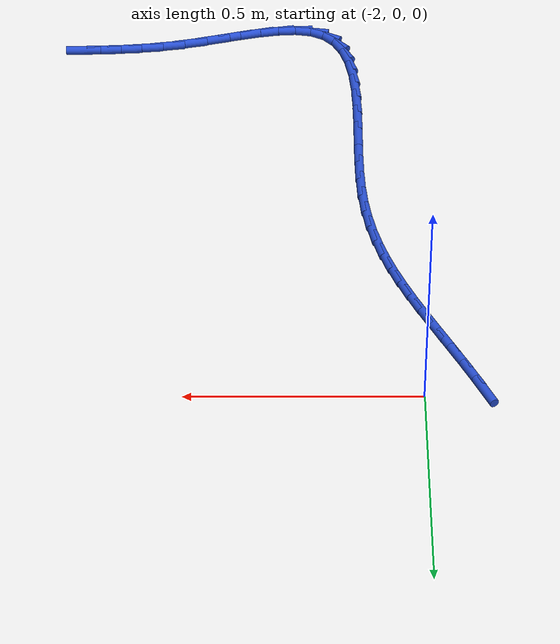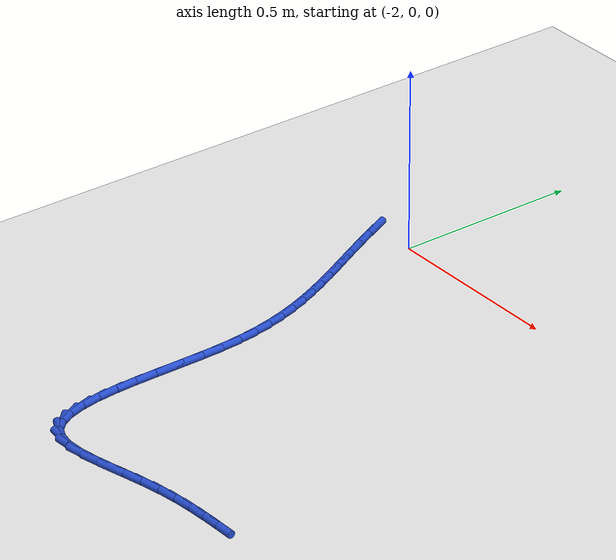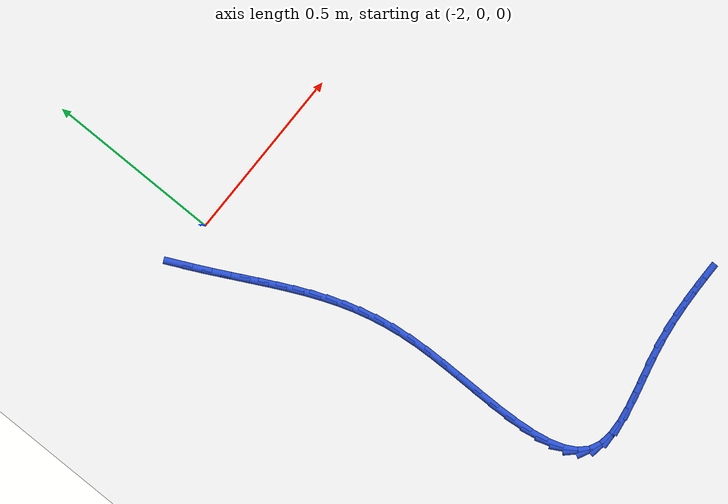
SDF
<sdf version="1.6">
 <world name="default">
  <model name="ground_plane">
   <static>1</static>
   <link name="link">
    <collision name="collision">
     <geometry><plane><normal>0 0 1</normal><size>100 100</size></plane></geometry>
     <surface><friction><ode><mu>100</mu><mu2>50</mu2></ode></friction></surface>
    </collision>
    <visual name="visual">
     <cast_shadows>0</cast_shadows>
     <geometry><plane><normal>0 0 1</normal><size>100 100</size></plane></geometry>
     <material>
      <script><uri>file://media/materials/scripts/gazebo.material</uri><name>Gazebo/WhiteGlow</name></script>
     </material>
    </visual>
   </link>
  </model>
  <model name="line">
   <link name="link_74">
    <pose>-2.124892368092735 -0.007736066495244359 0.01 0 1.57 -1.1232187132181986</pose>
    <collision name="collision">
     <geometry><cylinder><radius>0.01</radius><length>0.08</length></cylinder></geometry>
    </collision>
    <visual name="visual">
     <material>
      <script><name>Gazebo/Blue</name><uri>file://media/materials/scripts/gazebo.material</uri></script>
     </material>
     <geometry><cylinder><radius>0.01</radius><length>0.08</length></cylinder></geometry>
    </visual>
   </link>
   <link name="link_75">
    <pose>-2.101810845489153 -0.05581546816037469 0.01 0 1.57 -1.1047514095330906</pose>
    <collision name="collision">
     <geometry><cylinder><radius>0.01</radius><length>0.08</length></cylinder></geometry>
    </collision>
    <visual name="visual">
     <material>
      <script><name>Gazebo/Blue</name><uri>file://media/materials/scripts/gazebo.material</uri></script>
     </material>
     <geometry><cylinder><radius>0.01</radius><length>0.08</length></cylinder></geometry>
    </visual>
   </link>
   <link name="link_76">
    <pose>-2.0779389456481328 -0.10327449117829497 0.01 0 1.57 -1.0941880202939966</pose>
    <collision name="collision">
     <geometry><cylinder><radius>0.01</radius><length>0.08</length></cylinder></geometry>
    </collision>
    <visual name="visual">
     <material>
      <script><name>Gazebo/Blue</name><uri>file://media/materials/scripts/gazebo.material</uri></script>
     </material>
     <geometry><cylinder><radius>0.01</radius><length>0.08</length></cylinder></geometry>
    </visual>
   </link>
   <link name="link_77">
    <pose>-2.05383511401591 -0.14995952549926878 0.01 0 1.57 -1.0915617569941265</pose>
    <collision name="collision">
     <geometry><cylinder><radius>0.01</radius><length>0.08</length></cylinder></geometry>
    </collision>
    <visual name="visual">
     <material>
      <script><name>Gazebo/Blue</name><uri>file://media/materials/scripts/gazebo.material</uri></script>
     </material>
     <geometry><cylinder><radius>0.01</radius><length>0.08</length></cylinder></geometry>
    </visual>
   </link>
   <link name="link_78">
    <pose>-2.030057796038722 -0.19571696107355957 0.01 0 1.57 -1.0972733844440963</pose>
    <collision name="collision">
     <geometry><cylinder><radius>0.01</radius><length>0.08</length></cylinder></geometry>
    </collision>
    <visual name="visual">
     <material>
      <script><name>Gazebo/Blue</name><uri>file://media/materials/scripts/gazebo.material</uri></script>
     </material>
     <geometry><cylinder><radius>0.01</radius><length>0.08</length></cylinder></geometry>
    </visual>
   </link>
   <link name="link_79">
    <pose>-2.0071654371628016 -0.24039318785143274 0.01 0 1.57 -1.1119694350751819</pose>
    <collision name="collision">
     <geometry><cylinder><radius>0.01</radius><length>0.08</length></cylinder></geometry>
    </collision>
    <visual name="visual">
     <material>
      <script><name>Gazebo/Blue</name><uri>file://media/materials/scripts/gazebo.material</uri></script>
     </material>
     <geometry><cylinder><radius>0.01</radius><length>0.08</length></cylinder></geometry>
    </visual>
   </link>
   <link name="link_80">
    <pose>-1.9856593117580477 -0.2839288640391011 0.01 0 1.57 -1.1355880374992176</pose>
    <collision name="collision">
     <geometry><cylinder><radius>0.01</radius><length>0.08</length></cylinder></geometry>
    </collision>
    <visual name="visual">
     <material>
      <script><name>Gazebo/Blue</name><uri>file://media/materials/scripts/gazebo.material</uri></script>
     </material>
     <geometry><cylinder><radius>0.01</radius><length>0.08</length></cylinder></geometry>
    </visual>
   </link>
   <link name="link_81">
    <pose>-1.965762255299964 -0.3267237602234365 0.01 0 1.57 -1.1679799476230657</pose>
    <collision name="collision">
     <geometry><cylinder><radius>0.01</radius><length>0.08</length></cylinder></geometry>
    </collision>
    <visual name="visual">
     <material>
      <script><name>Gazebo/Blue</name><uri>file://media/materials/scripts/gazebo.material</uri></script>
     </material>
     <geometry><cylinder><radius>0.01</radius><length>0.08</length></cylinder></geometry>
    </visual>
   </link>
   <link name="link_82">
    <pose>-1.9476124619078745 -0.3693172104478587 0.01 0 1.57 -1.2086585441929671</pose>
    <collision name="collision">
     <geometry><cylinder><radius>0.01</radius><length>0.08</length></cylinder></geometry>
    </collision>
    <visual name="visual">
     <material>
      <script><name>Gazebo/Blue</name><uri>file://media/materials/scripts/gazebo.material</uri></script>
     </material>
     <geometry><cylinder><radius>0.01</radius><length>0.08</length></cylinder></geometry>
    </visual>
   </link>
   <link name="link_83">
    <pose>-1.931348106056585 -0.41224858114723983 0.01 0 1.57 -1.2565039343114657</pose>
    <collision name="collision">
     <geometry><cylinder><radius>0.01</radius><length>0.08</length></cylinder></geometry>
    </collision>
    <visual name="visual">
     <material>
      <script><name>Gazebo/Blue</name><uri>file://media/materials/scripts/gazebo.material</uri></script>
     </material>
     <geometry><cylinder><radius>0.01</radius><length>0.08</length></cylinder></geometry>
    </visual>
   </link>
   <link name="link_84">
    <pose>-1.9171073622209032 -0.4560572387564541 0.01 0 1.57 -1.3098043408482583</pose>
    <collision name="collision">
     <geometry><cylinder><radius>0.01</radius><length>0.08</length></cylinder></geometry>
    </collision>
    <visual name="visual">
     <material>
      <script><name>Gazebo/Blue</name><uri>file://media/materials/scripts/gazebo.material</uri></script>
     </material>
     <geometry><cylinder><radius>0.01</radius><length>0.08</length></cylinder></geometry>
    </visual>
   </link>
   <link name="link_85">
    <pose>-1.9050284048756367 -0.5012825497103729 0.01 0 1.57 -1.3664259054610666</pose>
    <collision name="collision">
     <geometry><cylinder><radius>0.01</radius><length>0.08</length></cylinder></geometry>
    </collision>
    <visual name="visual">
     <material>
      <script><name>Gazebo/Blue</name><uri>file://media/materials/scripts/gazebo.material</uri></script>
     </material>
     <geometry><cylinder><radius>0.01</radius><length>0.08</length></cylinder></geometry>
    </visual>
   </link>
   <link name="link_86">
    <pose>-1.8952494084955915 -0.5484638804438702 0.01 0 1.57 -1.4240854087342347</pose>
    <collision name="collision">
     <geometry><cylinder><radius>0.01</radius><length>0.08</length></cylinder></geometry>
    </collision>
    <visual name="visual">
     <material>
      <script><name>Gazebo/Blue</name><uri>file://media/materials/scripts/gazebo.material</uri></script>
     </material>
     <geometry><cylinder><radius>0.01</radius><length>0.08</length></cylinder></geometry>
    </visual>
   </link>
   <link name="link_87">
    <pose>-1.8879085475555764 -0.5981405973918184 0.01 0 1.57 -1.4806150386159076</pose>
    <collision name="collision">
     <geometry><cylinder><radius>0.01</radius><length>0.08</length></cylinder></geometry>
    </collision>
    <visual name="visual">
     <material>
      <script><name>Gazebo/Blue</name><uri>file://media/materials/scripts/gazebo.material</uri></script>
     </material>
     <geometry><cylinder><radius>0.01</radius><length>0.08</length></cylinder></geometry>
    </visual>
   </link>
   <link name="link_88">
    <pose>-1.8831422961012438 -0.6508491333252157 0.01 0 1.57 -1.5287892468278812</pose>
    <collision name="collision">
     <geometry><cylinder><radius>0.01</radius><length>0.08</length></cylinder></geometry>
    </collision>
    <visual name="visual">
     <material>
      <script><name>Gazebo/Blue</name><uri>file://media/materials/scripts/gazebo.material</uri></script>
     </material>
     <geometry><cylinder><radius>0.01</radius><length>0.08</length></cylinder></geometry>
    </visual>
   </link>
   <link name="link_89">
    <pose>-1.880797857634313 -0.7066268572684636 0.01 0 1.57 -1.5588830543556735</pose>
    <collision name="collision">
     <geometry><cylinder><radius>0.01</radius><length>0.08</length></cylinder></geometry>
    </collision>
    <visual name="visual">
     <material>
      <script><name>Gazebo/Blue</name><uri>file://media/materials/scripts/gazebo.material</uri></script>
     </material>
     <geometry><cylinder><radius>0.01</radius><length>0.08</length></cylinder></geometry>
    </visual>
   </link>
   <link name="link_90">
    <pose>-1.880108930160982 -0.7644526884397992 0.01 0 1.57 1.5687186193742393</pose>
    <collision name="collision">
     <geometry><cylinder><radius>0.01</radius><length>0.08</length></cylinder></geometry>
    </collision>
    <visual name="visual">
     <material>
      <script><name>Gazebo/Blue</name><uri>file://media/materials/scripts/gazebo.material</uri></script>
     </material>
     <geometry><cylinder><radius>0.01</radius><length>0.08</length></cylinder></geometry>
    </visual>
   </link>
   <link name="link_91">
    <pose>-1.8802309287454047 -0.8231704884818766 0.01 0 1.57 1.5692850495955846</pose>
    <collision name="collision">
     <geometry><cylinder><radius>0.01</radius><length>0.08</length></cylinder></geometry>
    </collision>
    <visual name="visual">
     <material>
      <script><name>Gazebo/Blue</name><uri>file://media/materials/scripts/gazebo.material</uri></script>
     </material>
     <geometry><cylinder><radius>0.01</radius><length>0.08</length></cylinder></geometry>
    </visual>
   </link>
   <link name="link_92">
    <pose>-1.880319268451735 -0.8816241190373533 0.01 0 1.57 -1.5569473422067805</pose>
    <collision name="collision">
     <geometry><cylinder><radius>0.01</radius><length>0.08</length></cylinder></geometry>
    </collision>
    <visual name="visual">
     <material>
      <script><name>Gazebo/Blue</name><uri>file://media/materials/scripts/gazebo.material</uri></script>
     </material>
     <geometry><cylinder><radius>0.01</radius><length>0.08</length></cylinder></geometry>
    </visual>
   </link>
   <link name="link_93">
    <pose>-1.8795293643441269 -0.9386574417488824 0.01 0 1.57 -1.5246873311496585</pose>
    <collision name="collision">
     <geometry><cylinder><radius>0.01</radius><length>0.08</length></cylinder></geometry>
    </collision>
    <visual name="visual">
     <material>
      <script><name>Gazebo/Blue</name><uri>file://media/materials/scripts/gazebo.material</uri></script>
     </material>
     <geometry><cylinder><radius>0.01</radius><length>0.08</length></cylinder></geometry>
    </visual>
   </link>
   <link name="link_94">
    <pose>-1.877016631486734 -0.9931143182591213 0.01 0 1.57 -1.470977039902991</pose>
    <collision name="collision">
     <geometry><cylinder><radius>0.01</radius><length>0.08</length></cylinder></geometry>
    </collision>
    <visual name="visual">
     <material>
      <script><name>Gazebo/Blue</name><uri>file://media/materials/scripts/gazebo.material</uri></script>
     </material>
     <geometry><cylinder><radius>0.01</radius><length>0.08</length></cylinder></geometry>
    </visual>
   </link>
   <link name="link_95">
    <pose>-1.871936484943711 -1.0438386102107249 0.01 0 1.57 -1.387599515431219</pose>
    <collision name="collision">
     <geometry><cylinder><radius>0.01</radius><length>0.08</length></cylinder></geometry>
    </collision>
    <visual name="visual">
     <material>
      <script><name>Gazebo/Blue</name><uri>file://media/materials/scripts/gazebo.material</uri></script>
     </material>
     <geometry><cylinder><radius>0.01</radius><length>0.08</length></cylinder></geometry>
    </visual>
   </link>
   <link name="link_96">
    <pose>-1.8634443397792109 -1.0896741792463465 0.01 0 1.57 -1.2607354581699513</pose>
    <collision name="collision">
     <geometry><cylinder><radius>0.01</radius><length>0.08</length></cylinder></geometry>
    </collision>
    <visual name="visual">
     <material>
      <script><name>Gazebo/Blue</name><uri>file://media/materials/scripts/gazebo.material</uri></script>
     </material>
     <geometry><cylinder><radius>0.01</radius><length>0.08</length></cylinder></geometry>
    </visual>
   </link>
   <link name="link_97">
    <pose>-1.850695611057388 -1.1294648870086437 0.01 0 1.57 -1.06970853159599</pose>
    <collision name="collision">
     <geometry><cylinder><radius>0.01</radius><length>0.08</length></cylinder></geometry>
    </collision>
    <visual name="visual">
     <material>
      <script><name>Gazebo/Blue</name><uri>file://media/materials/scripts/gazebo.material</uri></script>
     </material>
     <geometry><cylinder><radius>0.01</radius><length>0.08</length></cylinder></geometry>
    </visual>
   </link>
   <link name="link_98">
    <pose>-1.8328457138423961 -1.1620545951402703 0.01 0 1.57 -0.7944950535212576</pose>
    <collision name="collision">
     <geometry><cylinder><radius>0.01</radius><length>0.08</length></cylinder></geometry>
    </collision>
    <visual name="visual">
     <material>
      <script><name>Gazebo/Blue</name><uri>file://media/materials/scripts/gazebo.material</uri></script>
     </material>
     <geometry><cylinder><radius>0.01</radius><length>0.08</length></cylinder></geometry>
    </visual>
   </link>
   <link name="link_99">
    <pose>-1.8090500631983897 -1.1862871652838831 0.01 0 1.57 -0.4489573000069013</pose>
    <collision name="collision">
     <geometry><cylinder><radius>0.01</radius><length>0.08</length></cylinder></geometry>
    </collision>
    <visual name="visual">
     <material>
      <script><name>Gazebo/Blue</name><uri>file://media/materials/scripts/gazebo.material</uri></script>
     </material>
     <geometry><cylinder><radius>0.01</radius><length>0.08</length></cylinder></geometry>
    </visual>
   </link>
   <link name="link_100">
    <pose>-1.7784722608063273 -1.2010186241726941 0.01 0 1.57 -0.13714864598085288</pose>
    <collision name="collision">
     <geometry><cylinder><radius>0.01</radius><length>0.08</length></cylinder></geometry>
    </collision>
    <visual name="visual">
     <material>
      <script><name>Gazebo/Blue</name><uri>file://media/materials/scripts/gazebo.material</uri></script>
     </material>
     <geometry><cylinder><radius>0.01</radius><length>0.08</length></cylinder></geometry>
    </visual>
   </link>
   <link name="link_101">
    <pose>-1.7410057771373393 -1.2061895637686193 0.01 0 1.57 0.05840991272380127</pose>
    <collision name="collision">
     <geometry><cylinder><radius>0.01</radius><length>0.08</length></cylinder></geometry>
    </collision>
    <visual name="visual">
     <material>
      <script><name>Gazebo/Blue</name><uri>file://media/materials/scripts/gazebo.material</uri></script>
     </material>
     <geometry><cylinder><radius>0.01</radius><length>0.08</length></cylinder></geometry>
    </visual>
   </link>
   <link name="link_102">
    <pose>-1.6978393759635833 -1.2036653467515295 0.01 0 1.57 0.1698964945748934</pose>
    <collision name="collision">
     <geometry><cylinder><radius>0.01</radius><length>0.08</length></cylinder></geometry>
    </collision>
    <visual name="visual">
     <material>
      <script><name>Gazebo/Blue</name><uri>file://media/materials/scripts/gazebo.material</uri></script>
     </material>
     <geometry><cylinder><radius>0.01</radius><length>0.08</length></cylinder></geometry>
    </visual>
   </link>
   <link name="link_103">
    <pose>-1.6502948936257908 -1.1955090780293631 0.01 0 1.57 0.22770163816869787</pose>
    <collision name="collision">
     <geometry><cylinder><radius>0.01</radius><length>0.08</length></cylinder></geometry>
    </collision>
    <visual name="visual">
     <material>
      <script><name>Gazebo/Blue</name><uri>file://media/materials/scripts/gazebo.material</uri></script>
     </material>
     <geometry><cylinder><radius>0.01</radius><length>0.08</length></cylinder></geometry>
    </visual>
   </link>
   <link name="link_104">
    <pose>-1.5996941664646924 -1.18378386251006 0.01 0 1.57 0.24762541866430965</pose>
    <collision name="collision">
     <geometry><cylinder><radius>0.01</radius><length>0.08</length></cylinder></geometry>
    </collision>
    <visual name="visual">
     <material>
      <script><name>Gazebo/Blue</name><uri>file://media/materials/scripts/gazebo.material</uri></script>
     </material>
     <geometry><cylinder><radius>0.01</radius><length>0.08</length></cylinder></geometry>
    </visual>
   </link>
   <link name="link_105">
    <pose>-1.547359030821017 -1.1705528051015586 0.01 0 1.57 0.23580209974665126</pose>
    <collision name="collision">
     <geometry><cylinder><radius>0.01</radius><length>0.08</length></cylinder></geometry>
    </collision>
    <visual name="visual">
     <material>
      <script><name>Gazebo/Blue</name><uri>file://media/materials/scripts/gazebo.material</uri></script>
     </material>
     <geometry><cylinder><radius>0.01</radius><length>0.08</length></cylinder></geometry>
    </visual>
   </link>
   <link name="link_106">
    <pose>-1.494611323035496 -1.157879010711799 0.01 0 1.57 0.19290257092044547</pose>
    <collision name="collision">
     <geometry><cylinder><radius>0.01</radius><length>0.08</length></cylinder></geometry>
    </collision>
    <visual name="visual">
     <material>
      <script><name>Gazebo/Blue</name><uri>file://media/materials/scripts/gazebo.material</uri></script>
     </material>
     <geometry><cylinder><radius>0.01</radius><length>0.08</length></cylinder></geometry>
    </visual>
   </link>
   <link name="link_107">
    <pose>-1.4427287034021994 -1.1477447031170203 0.01 0 1.57 0.13806579015816162</pose>
    <collision name="collision">
     <geometry><cylinder><radius>0.01</radius><length>0.08</length></cylinder></geometry>
    </collision>
    <visual name="visual">
     <material>
      <script><name>Gazebo/Blue</name><uri>file://media/materials/scripts/gazebo.material</uri></script>
     </material>
     <geometry><cylinder><radius>0.01</radius><length>0.08</length></cylinder></geometry>
    </visual>
   </link>
   <link name="link_108">
    <pose>-1.3922212195877648 -1.1407266978981128 0.01 0 1.57 0.09140115390467801</pose>
    <collision name="collision">
     <geometry><cylinder><radius>0.01</radius><length>0.08</length></cylinder></geometry>
    </collision>
    <visual name="visual">
     <material>
      <script><name>Gazebo/Blue</name><uri>file://media/materials/scripts/gazebo.material</uri></script>
     </material>
     <geometry><cylinder><radius>0.01</radius><length>0.08</length></cylinder></geometry>
    </visual>
   </link>
   <link name="link_109">
    <pose>-1.342948247880831 -1.1362105080773028 0.01 0 1.57 0.05526674488657187</pose>
    <collision name="collision">
     <geometry><cylinder><radius>0.01</radius><length>0.08</length></cylinder></geometry>
    </collision>
    <visual name="visual">
     <material>
      <script><name>Gazebo/Blue</name><uri>file://media/materials/scripts/gazebo.material</uri></script>
     </material>
     <geometry><cylinder><radius>0.01</radius><length>0.08</length></cylinder></geometry>
    </visual>
   </link>
   <link name="link_110">
    <pose>-1.2947485772402487 -1.1335439537038716 0.01 0 1.57 0.031057340709541355</pose>
    <collision name="collision">
     <geometry><cylinder><radius>0.01</radius><length>0.08</length></cylinder></geometry>
    </collision>
    <visual name="visual">
     <material>
      <script><name>Gazebo/Blue</name><uri>file://media/materials/scripts/gazebo.material</uri></script>
     </material>
     <geometry><cylinder><radius>0.01</radius><length>0.08</length></cylinder></geometry>
    </visual>
   </link>
   <link name="link_111">
    <pose>-1.247460996624873 -1.1320748548271005 0.01 0 1.57 0.019848892875326585</pose>
    <collision name="collision">
     <geometry><cylinder><radius>0.01</radius><length>0.08</length></cylinder></geometry>
    </collision>
    <visual name="visual">
     <material>
      <script><name>Gazebo/Blue</name><uri>file://media/materials/scripts/gazebo.material</uri></script>
     </material>
     <geometry><cylinder><radius>0.01</radius><length>0.08</length></cylinder></geometry>
    </visual>
   </link>
  </model>
 </world>
</sdf>
